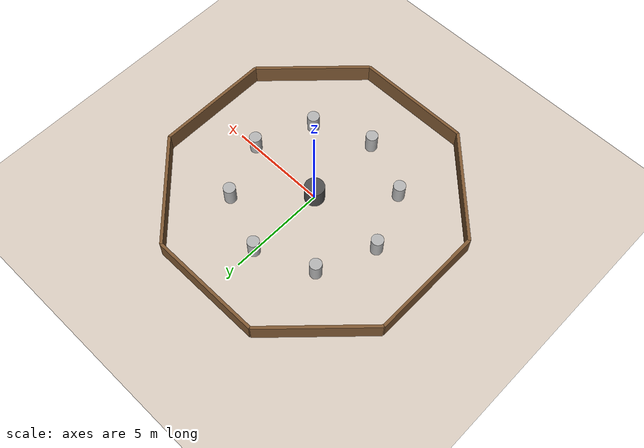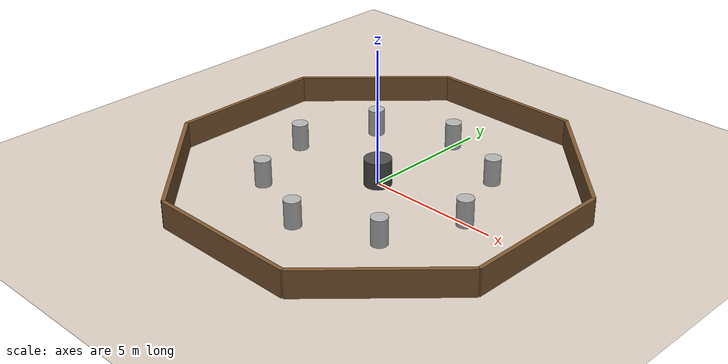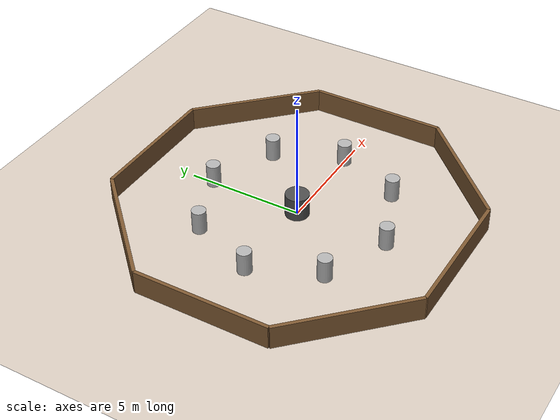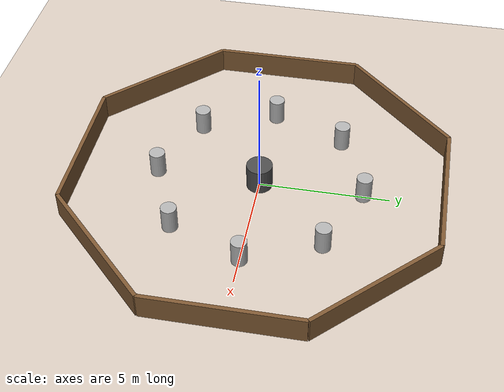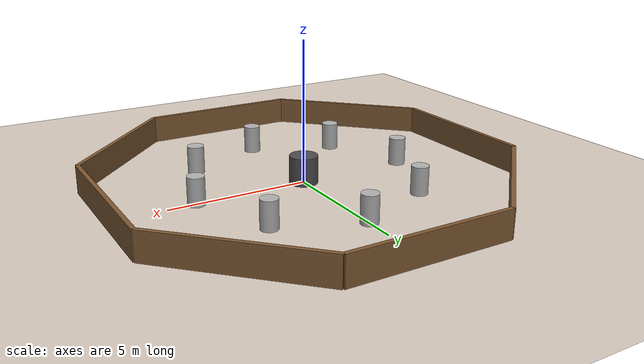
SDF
<?xml version="1.0" ?>
<!-- WORLD: Arena — Octagonal arena boundary with pillar obstacles inside -->
<sdf version="1.6">
  <world name="default">
    <physics name="1ms" type="ignored"><max_step_size>0.001</max_step_size><real_time_factor>1.0</real_time_factor></physics>
    <plugin filename="libignition-gazebo-physics-system.so" name="ignition::gazebo::systems::Physics"/>
    <plugin filename="libignition-gazebo-user-commands-system.so" name="ignition::gazebo::systems::UserCommands"/>
    <plugin filename="libignition-gazebo-scene-broadcaster-system.so" name="ignition::gazebo::systems::SceneBroadcaster"/>
    <light type="directional" name="sun"><cast_shadows>true</cast_shadows><pose>0 0 10 0 0 0</pose><diffuse>0.85 0.85 0.85 1</diffuse><specular>0.2 0.2 0.2 1</specular><attenuation><range>1000</range><constant>0.9</constant><linear>0.01</linear><quadratic>0.001</quadratic></attenuation><direction>-0.5 0.1 -0.9</direction></light>
    <model name="ground"><static>true</static><link name="l"><collision name="c"><geometry><plane><normal>0 0 1</normal><size>100 100</size></plane></geometry></collision><visual name="v"><geometry><plane><normal>0 0 1</normal><size>100 100</size></plane></geometry><material><ambient>0.85 0.8 0.75 1</ambient><diffuse>0.85 0.8 0.75 1</diffuse></material></visual></link></model>

    <!-- Octagonal arena (8 walls, radius ~7m) -->
    <model name="o1"><static>true</static><pose>0 7 0.5 0 0 0</pose><link name="l"><collision name="c"><geometry><box><size>5.8 0.15 1</size></box></geometry></collision><visual name="v"><geometry><box><size>5.8 0.15 1</size></box></geometry><material><ambient>0.5 0.35 0.2 1</ambient><diffuse>0.5 0.35 0.2 1</diffuse></material></visual></link></model>
    <!-- NE -->
    <model name="o2"><static>true</static><pose>4.95 4.95 0.5 0 0 -0.7854</pose><link name="l"><collision name="c"><geometry><box><size>5.8 0.15 1</size></box></geometry></collision><visual name="v"><geometry><box><size>5.8 0.15 1</size></box></geometry><material><ambient>0.5 0.35 0.2 1</ambient><diffuse>0.5 0.35 0.2 1</diffuse></material></visual></link></model>
    <model name="o3"><static>true</static><pose>7 0 0.5 0 0 0</pose><link name="l"><collision name="c"><geometry><box><size>0.15 5.8 1</size></box></geometry></collision><visual name="v"><geometry><box><size>0.15 5.8 1</size></box></geometry><material><ambient>0.5 0.35 0.2 1</ambient><diffuse>0.5 0.35 0.2 1</diffuse></material></visual></link></model>
    <!-- SE -->
    <model name="o4"><static>true</static><pose>4.95 -4.95 0.5 0 0 0.7854</pose><link name="l"><collision name="c"><geometry><box><size>5.8 0.15 1</size></box></geometry></collision><visual name="v"><geometry><box><size>5.8 0.15 1</size></box></geometry><material><ambient>0.5 0.35 0.2 1</ambient><diffuse>0.5 0.35 0.2 1</diffuse></material></visual></link></model>
    <model name="o5"><static>true</static><pose>0 -7 0.5 0 0 0</pose><link name="l"><collision name="c"><geometry><box><size>5.8 0.15 1</size></box></geometry></collision><visual name="v"><geometry><box><size>5.8 0.15 1</size></box></geometry><material><ambient>0.5 0.35 0.2 1</ambient><diffuse>0.5 0.35 0.2 1</diffuse></material></visual></link></model>
    <!-- SW -->
    <model name="o6"><static>true</static><pose>-4.95 -4.95 0.5 0 0 -0.7854</pose><link name="l"><collision name="c"><geometry><box><size>5.8 0.15 1</size></box></geometry></collision><visual name="v"><geometry><box><size>5.8 0.15 1</size></box></geometry><material><ambient>0.5 0.35 0.2 1</ambient><diffuse>0.5 0.35 0.2 1</diffuse></material></visual></link></model>
    <model name="o7"><static>true</static><pose>-7 0 0.5 0 0 0</pose><link name="l"><collision name="c"><geometry><box><size>0.15 5.8 1</size></box></geometry></collision><visual name="v"><geometry><box><size>0.15 5.8 1</size></box></geometry><material><ambient>0.5 0.35 0.2 1</ambient><diffuse>0.5 0.35 0.2 1</diffuse></material></visual></link></model>
    <!-- NW -->
    <model name="o8"><static>true</static><pose>-4.95 4.95 0.5 0 0 0.7854</pose><link name="l"><collision name="c"><geometry><box><size>5.8 0.15 1</size></box></geometry></collision><visual name="v"><geometry><box><size>5.8 0.15 1</size></box></geometry><material><ambient>0.5 0.35 0.2 1</ambient><diffuse>0.5 0.35 0.2 1</diffuse></material></visual></link></model>

    <!-- Ring of 8 pillars (cylinders) inside the arena -->
    <model name="p1"><static>true</static><pose>0 4 0.5 0 0 0</pose><link name="l"><collision name="c"><geometry><cylinder><radius>0.3</radius><length>1</length></cylinder></geometry></collision><visual name="v"><geometry><cylinder><radius>0.3</radius><length>1</length></cylinder></geometry><material><ambient>0.7 0.7 0.7 1</ambient><diffuse>0.7 0.7 0.7 1</diffuse></material></visual></link></model>
    <model name="p2"><static>true</static><pose>2.83 2.83 0.5 0 0 0</pose><link name="l"><collision name="c"><geometry><cylinder><radius>0.3</radius><length>1</length></cylinder></geometry></collision><visual name="v"><geometry><cylinder><radius>0.3</radius><length>1</length></cylinder></geometry><material><ambient>0.7 0.7 0.7 1</ambient><diffuse>0.7 0.7 0.7 1</diffuse></material></visual></link></model>
    <model name="p3"><static>true</static><pose>4 0 0.5 0 0 0</pose><link name="l"><collision name="c"><geometry><cylinder><radius>0.3</radius><length>1</length></cylinder></geometry></collision><visual name="v"><geometry><cylinder><radius>0.3</radius><length>1</length></cylinder></geometry><material><ambient>0.7 0.7 0.7 1</ambient><diffuse>0.7 0.7 0.7 1</diffuse></material></visual></link></model>
    <model name="p4"><static>true</static><pose>2.83 -2.83 0.5 0 0 0</pose><link name="l"><collision name="c"><geometry><cylinder><radius>0.3</radius><length>1</length></cylinder></geometry></collision><visual name="v"><geometry><cylinder><radius>0.3</radius><length>1</length></cylinder></geometry><material><ambient>0.7 0.7 0.7 1</ambient><diffuse>0.7 0.7 0.7 1</diffuse></material></visual></link></model>
    <model name="p5"><static>true</static><pose>0 -4 0.5 0 0 0</pose><link name="l"><collision name="c"><geometry><cylinder><radius>0.3</radius><length>1</length></cylinder></geometry></collision><visual name="v"><geometry><cylinder><radius>0.3</radius><length>1</length></cylinder></geometry><material><ambient>0.7 0.7 0.7 1</ambient><diffuse>0.7 0.7 0.7 1</diffuse></material></visual></link></model>
    <model name="p6"><static>true</static><pose>-2.83 -2.83 0.5 0 0 0</pose><link name="l"><collision name="c"><geometry><cylinder><radius>0.3</radius><length>1</length></cylinder></geometry></collision><visual name="v"><geometry><cylinder><radius>0.3</radius><length>1</length></cylinder></geometry><material><ambient>0.7 0.7 0.7 1</ambient><diffuse>0.7 0.7 0.7 1</diffuse></material></visual></link></model>
    <model name="p7"><static>true</static><pose>-4 0 0.5 0 0 0</pose><link name="l"><collision name="c"><geometry><cylinder><radius>0.3</radius><length>1</length></cylinder></geometry></collision><visual name="v"><geometry><cylinder><radius>0.3</radius><length>1</length></cylinder></geometry><material><ambient>0.7 0.7 0.7 1</ambient><diffuse>0.7 0.7 0.7 1</diffuse></material></visual></link></model>
    <model name="p8"><static>true</static><pose>-2.83 2.83 0.5 0 0 0</pose><link name="l"><collision name="c"><geometry><cylinder><radius>0.3</radius><length>1</length></cylinder></geometry></collision><visual name="v"><geometry><cylinder><radius>0.3</radius><length>1</length></cylinder></geometry><material><ambient>0.7 0.7 0.7 1</ambient><diffuse>0.7 0.7 0.7 1</diffuse></material></visual></link></model>
    <!-- Center pedestal -->
    <model name="center"><static>true</static><pose>0 0 0.5 0 0 0</pose><link name="l"><collision name="c"><geometry><cylinder><radius>0.5</radius><length>1</length></cylinder></geometry></collision><visual name="v"><geometry><cylinder><radius>0.5</radius><length>1</length></cylinder></geometry><material><ambient>0.3 0.3 0.3 1</ambient><diffuse>0.3 0.3 0.3 1</diffuse></material></visual></link></model>
  </world>
</sdf>
